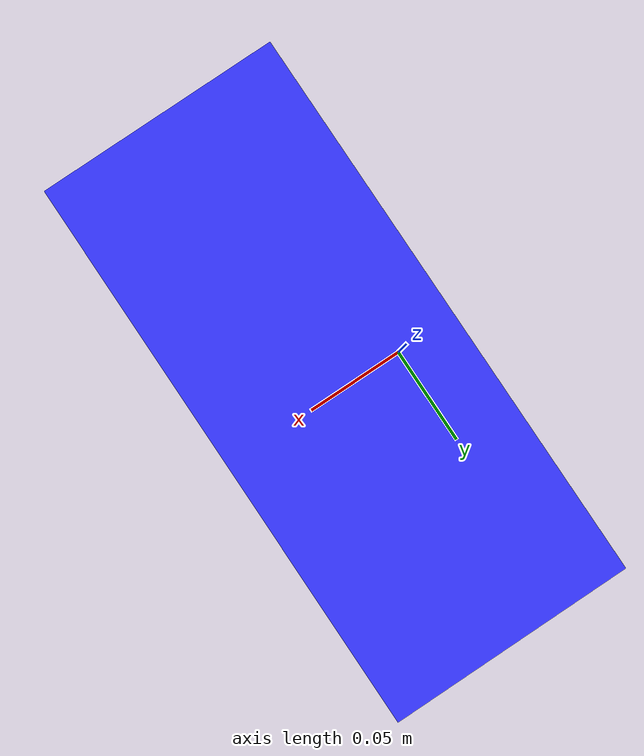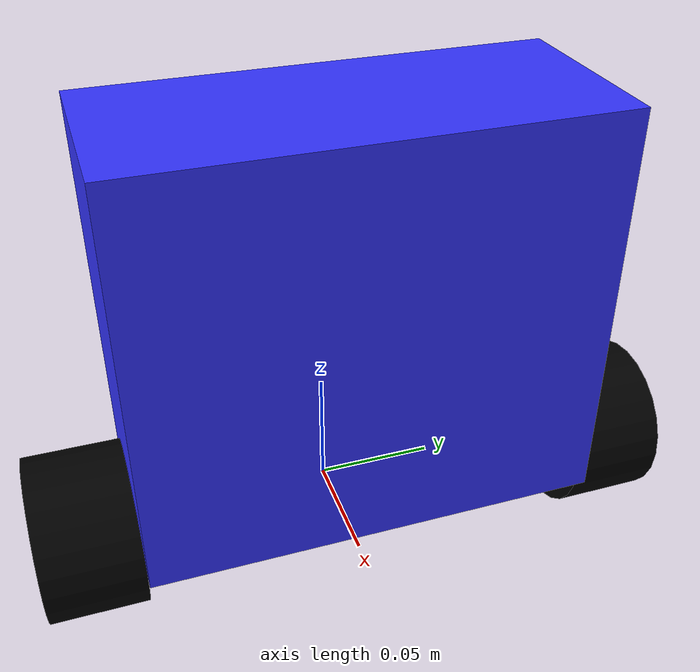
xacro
<?xml version="1.0"?>
<robot name="self_balance_robot" xmlns:xacro="http://www.ros.org/wiki/xacro">

    <xacro:include filename="common_prop.xacro"/>
    <xacro:include filename="chassis.xacro"/>

<!-- IMU -->
    <joint name="imu_joint" type="fixed">
        <parent link="chassis_link"/>
        <child link="imu_link"/>
        <origin xyz="0 0 ${chassis_h/2}" rpy="0 0 0"/>  <!-- Moved IMU to top of chassis -->
    </joint>

    <link name="imu_link"/>

    <gazebo reference="imu_link">
        <sensor name="imu_sensor" type="imu">
            <always_on>1</always_on>
            <update_rate>50</update_rate>
            <visualize>true</visualize>
            <topic>imu</topic>
            <enable_metrics>true</enable_metrics>
            <gz_frame_id>imu_link</gz_frame_id>
            <plugin filename="gz-sim-imu-system" name="gz::sim::systems::Imu">
            </plugin>
        </sensor>
    </gazebo>

<!-- Gazebo properties for chassis -->
    <gazebo reference="chassis_link">
        <mu1>0.2</mu1>  <!-- Friction coefficient -->
        <mu2>0.2</mu2>
        <kp>1000000.0</kp>  <!-- Contact stiffness -->
        <kd>100.0</kd>     <!-- Contact damping -->
        <material>Gazebo/Blue</material>
    </gazebo>

<!-- Gazebo properties for wheels -->
    <gazebo reference="left_wheel_link">
        <mu1>1.0</mu1>  <!-- Higher friction for wheels -->
        <mu2>1.0</mu2>
        <kp>1000000.0</kp>
        <kd>100.0</kd>
        <material>Gazebo/Black</material>
    </gazebo>

    <gazebo reference="right_wheel_link">
        <mu1>1.0</mu1>
        <mu2>1.0</mu2>
        <kp>1000000.0</kp>
        <kd>100.0</kd>
        <material>Gazebo/Black</material>
    </gazebo>

<!-- Differential Drive Plugin -->
    <gazebo>
        <plugin filename="libgz-sim-diff-drive-system.so" name="gz::sim::systems::DiffDrive">
            <left_joint>left_wheel_joint</left_joint>
            <right_joint>right_wheel_joint</right_joint>
            <wheel_separation>${chassis_w + wheel_l}</wheel_separation>  <!-- Fixed to use wheel_l instead of wheel_r -->
            <wheel_radius>${wheel_r}</wheel_radius>
            <odom_publish_rate>20</odom_publish_rate>
            <topic>cmd_vel</topic>
        </plugin>

        <plugin filename="gz-sim-joint-state-publisher-system" name="gz::sim::systems::JointStatePublisher">
            <topic>joint_states</topic>
            <joint_name>left_wheel_joint</joint_name>
            <joint_name>right_wheel_joint</joint_name>
        </plugin>
    </gazebo>
</robot>

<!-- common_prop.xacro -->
<robot xmlns:xacro="http://www.ros.org/wiki/xacro">
<!-- Materials -->
    <material name="blue">
        <color rgba="0.2 0.2 1 1"/>
    </material>

    <material name="black">
        <color rgba="0 0 0 1"/>
    </material>

<!-- Variables of the robot -->
    <xacro:property name="chassis_l"  value="0.075" />
    <xacro:property name="chassis_w"  value="0.175" />
    <xacro:property name="chassis_h"  value="0.157" />

    <xacro:property name="wheel_r"    value="0.0316"/>
    <xacro:property name="wheel_l"    value="0.037" />

    <xacro:property name="chassis_m"  value="0.388" />
    <xacro:property name="wheel_m"    value="0.0377"/>

<!-- Macros -->
    <!-- cylindrical wheels -->
            <xacro:macro name="wheel" params="prefix">
                <link name="${prefix}_wheel_link">
                    <visual>
                        <geometry>
                            <cylinder radius="${wheel_r}" length="${wheel_l}"/>
                        </geometry>
                        <material name="black"/>
                    </visual>
                    <xacro:inertial_cylinder m="${wheel_m}"
                                            r="${wheel_r}"
                                            l="${wheel_l}"
                                            xyz="0 0 0" rpy="0 0 0"/>
                    <collision>
                        <geometry>
                            <cylinder radius="${wheel_r}" length="${wheel_l}"/>
                        </geometry>
                    </collision>
                </link>
            </xacro:macro>

    <!-- Inertias -->
        <xacro:macro name="inertial_cylinder" params="m r l xyz rpy">
            <inertial>
                <origin xyz="${xyz}" rpy="${rpy}"/>
                <mass value="${m}"/>
                <inertia ixx="${(m/12) * (3*r*r + l*l)}" ixy="0" ixz="0"
                        iyy="${(m/12) * (3*r*r + l*l)}" iyz="0"
                        izz="${(m*r*r) / 2}"/>
            </inertial>
        </xacro:macro>

        <xacro:macro name="inertial_box" params="m l w h xyz rpy">
            <inertial>
                <origin xyz="${xyz}" rpy="${rpy}"/>
                <mass value="${m}"/>
                <inertia ixx="${(m/12) * (h*h + l*l)}" ixy="0" ixz="0"
                        iyy="${(m/12) * (h*h + w*w)}" iyz="0"
                        izz="${(m/12) * (w*w + l*l)}"/>
            </inertial>
        </xacro:macro>
</robot>

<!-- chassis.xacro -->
<robot xmlns:xacro="http://www.ros.org/wiki/xacro">

<!-- Links of the chassis -->
    <link name="base_link"/>

    <link name="chassis_link">
        <visual>
            <origin xyz="${chassis_l/2} 0 ${chassis_h/2}" rpy="0 0 0"/>
            <geometry>
                <box size="${chassis_l} ${chassis_w} ${chassis_h}"/>
            </geometry>
            <material name="blue"/>
        </visual>

        <xacro:inertial_box m="${chassis_m}"
                            l="${chassis_l}"
                            w="${chassis_w}"
                            h="${chassis_h}"
                            xyz="${chassis_l/2} 0 ${chassis_h/2}"
                            rpy="0 0 0" />

        <collision>
            <geometry>
                <box size="${chassis_l} ${chassis_w} ${chassis_h}"/>
            </geometry>
            <origin xyz="${chassis_l/2} 0 ${chassis_h/2}" rpy="0 0 0"/>
        </collision>
    </link>

    <xacro:wheel prefix="left"/>
    <xacro:wheel prefix="right"/>

<!-- Joints of the chassis -->
    <joint name="chassis_joint" type="fixed">
        <parent link="base_link"/>
        <child link="chassis_link"/>
        <origin xyz="0 0 ${wheel_r}"/>
    </joint>

    <joint name="left_wheel_joint" type="continuous">
        <parent link="chassis_link"/>
        <child link="left_wheel_link"/>
        <origin xyz="${chassis_l/2} ${chassis_w/2 + wheel_l/2} 0" rpy="${pi/2} 0 0"/>
        <axis xyz="0 0 -1"/>
    </joint>

    <joint name="right_wheel_joint" type="continuous">
        <parent link="chassis_link"/>
        <child link="right_wheel_link"/>
        <origin xyz="${chassis_l/2} ${-(chassis_w/2 + wheel_l/2)} 0" rpy="${pi/2} 0 0"/>
        <axis xyz="0 0 -1"/>
    </joint>
</robot>
